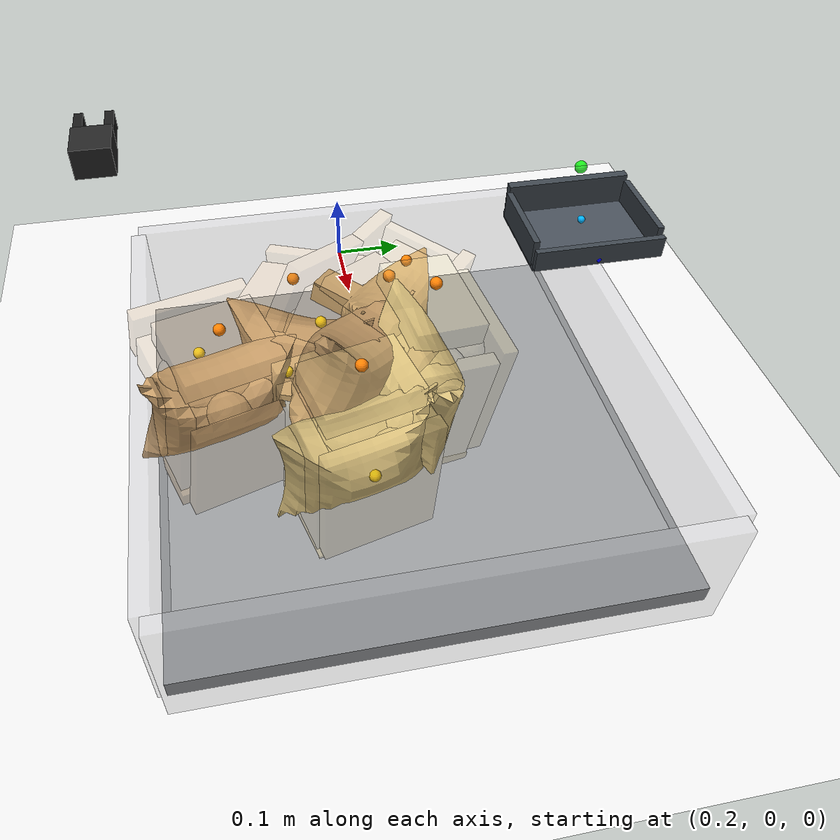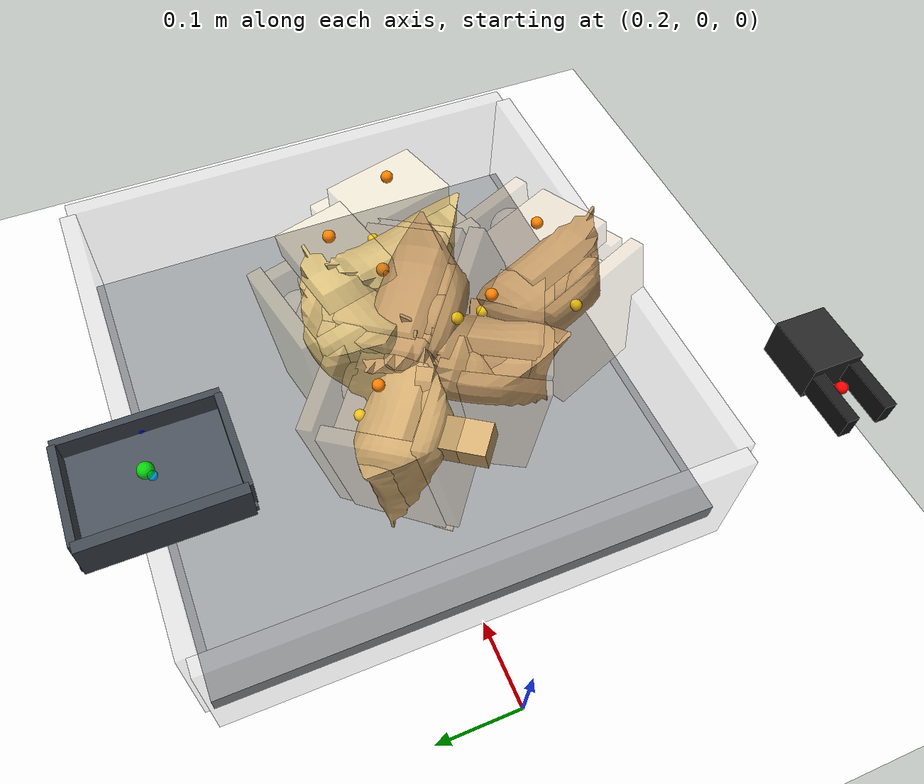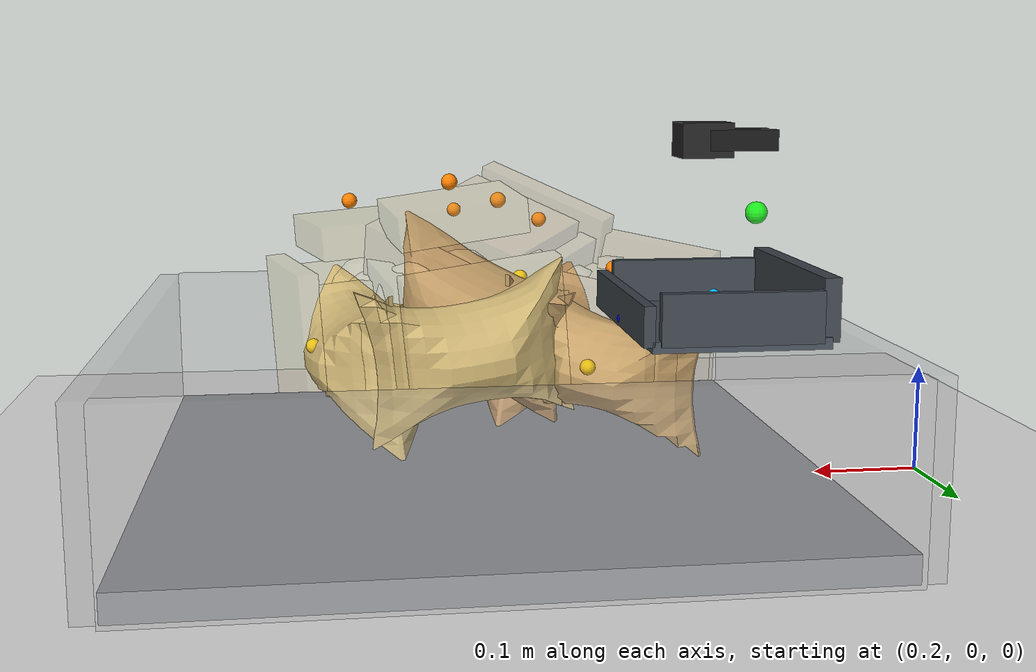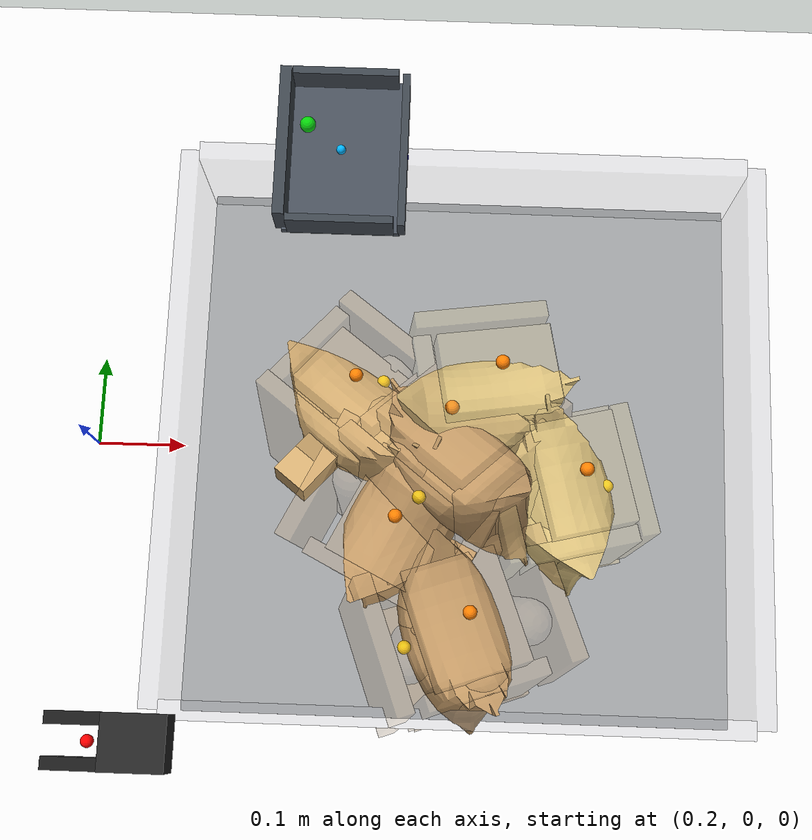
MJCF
<mujoco model="side_bulged_unstable_leaning_wedged_ep0_try0">
  <compiler angle="radian" coordinate="local" inertiafromgeom="true" meshdir="D:/Michael/2025/01.Research/01.Parceldetection/16.Pybullet/bullet3-master (1)/bullet3-master/examples/pybullet/examples/DeformableTest/Sackcodex2/object"/>
  <option timestep="0.002" gravity="0 0 -9.81" integrator="implicitfast" iterations="100" tolerance="1e-8"/>
  <size memory="768M" nconmax="12000"/>

  <visual>
    <global azimuth="128" elevation="-20"/>
    <headlight ambient="0.34 0.34 0.34" diffuse="0.78 0.78 0.78" specular="0.15 0.15 0.15"/>
    <rgba haze="0.11 0.13 0.18 1"/>
  </visual>

  <default>
    <geom condim="4" friction="1.15 0.03 0.01" margin="0.003" solimp="0.93 0.98 0.003" solref="0.012 1"/>
    <joint damping="1.2" armature="0.002"/>
    <position kp="2500" forcelimited="true" forcerange="-420 420"/>
    <motor ctrllimited="true"/>
  </default>

  <asset>
    <mesh name="sack_0_visual_mesh" file="sack6Apply.obj" scale="0.0727 0.0727 0.0766"/>
    <mesh name="sack_1_visual_mesh" file="sack9.obj" scale="0.0698 0.0698 0.0742"/>
    <mesh name="sack_2_visual_mesh" file="sack9.obj" scale="0.0699 0.0699 0.0769"/>
    <mesh name="sack_3_visual_mesh" file="sack10.obj" scale="0.0668 0.0668 0.0689"/>
    <mesh name="sack_4_visual_mesh" file="sack6Apply.obj" scale="0.0717 0.0717 0.0766"/>
    <mesh name="sack_5_visual_mesh" file="sack7.obj" scale="0.0715 0.0715 0.0786"/>
  </asset>

  <worldbody>
    <light name="key" pos="0.85 0.15 1.8" dir="-0.2 -0.1 -1" directional="true"/>
    <geom name="floor" type="plane" size="2 2 0.1" rgba="0.93 0.93 0.93 1"/>
    <geom name="work_pad" type="box" pos="0.62 0 0.012" size="0.30 0.30 0.012" rgba="0.60 0.61 0.62 1" friction="1.4 0.05 0.01"/>
    <geom name="corral_front" type="box" pos="0.93 0.00 0.08" size="0.010 0.30 0.08" rgba="0.55 0.55 0.58 0.22" friction="1.0 0.03 0.01"/>
    <geom name="corral_back" type="box" pos="0.31 0.00 0.08" size="0.010 0.30 0.08" rgba="0.55 0.55 0.58 0.18" friction="1.0 0.03 0.01"/>
    <geom name="corral_left" type="box" pos="0.62 0.30 0.08" size="0.30 0.010 0.08" rgba="0.55 0.55 0.58 0.14" friction="1.0 0.03 0.01"/>
    <geom name="corral_right" type="box" pos="0.62 -0.30 0.08" size="0.30 0.010 0.08" rgba="0.55 0.55 0.58 0.14" friction="1.0 0.03 0.01"/>
    <camera name="overview" pos="1.22 0.00 0.92" xyaxes="0 1 0 -0.46 0 0.88"/>

    <body name="gripper_mocap" mocap="true" pos="0.36 -0.33 0.30" quat="0.707107 0 -0.707107 0"/>
    <body name="scoop_mocap" mocap="true" pos="0.42 0.28 0.20" quat="1 0 0 0"/>

    <body name="gripper_ctrl_base" pos="0.36 -0.33 0.30">
      <inertial pos="0 0 0" mass="0.001" diaginertia="1e-6 1e-6 1e-6"/>
      <joint name="gripper_ctrl_x" type="slide" axis="1 0 0" limited="true" range="0.20 1.00"/>
      <body name="gripper_ctrl_y_body">
        <inertial pos="0 0 0" mass="0.001" diaginertia="1e-6 1e-6 1e-6"/>
        <joint name="gripper_ctrl_y" type="slide" axis="0 1 0" limited="true" range="-0.60 0.60"/>
        <body name="gripper_ctrl_z_body">
          <inertial pos="0 0 0" mass="0.001" diaginertia="1e-6 1e-6 1e-6"/>
          <joint name="gripper_ctrl_z" type="slide" axis="0 0 1" limited="true" range="0.04 0.70"/>
          <body name="gripper_ctrl_yaw_body">
            <inertial pos="0 0 0" mass="0.001" diaginertia="1e-6 1e-6 1e-6"/>
            <joint name="gripper_ctrl_yaw" type="hinge" axis="0 0 1" limited="true" range="-3.1416 3.1416"/>
            <body name="gripper_ctrl_pitch_body">
              <inertial pos="0 0 0" mass="0.001" diaginertia="1e-6 1e-6 1e-6"/>
              <joint name="gripper_ctrl_pitch" type="hinge" axis="0 1 0" limited="true" range="-3.1416 3.1416"/>
              <body name="gripper_ctrl_roll_body">
                <inertial pos="0 0 0" mass="0.001" diaginertia="1e-6 1e-6 1e-6"/>
                <joint name="gripper_ctrl_roll" type="hinge" axis="1 0 0" limited="true" range="-3.1416 3.1416"/>
              </body>
            </body>
          </body>
        </body>
      </body>
    </body>

    <body name="scoop_ctrl_base" pos="0.42 0.28 0.20">
      <inertial pos="0 0 0" mass="0.001" diaginertia="1e-6 1e-6 1e-6"/>
      <joint name="scoop_ctrl_x" type="slide" axis="1 0 0" limited="true" range="0.20 1.00"/>
      <body name="scoop_ctrl_y_body">
        <inertial pos="0 0 0" mass="0.001" diaginertia="1e-6 1e-6 1e-6"/>
        <joint name="scoop_ctrl_y" type="slide" axis="0 1 0" limited="true" range="-0.60 0.60"/>
        <body name="scoop_ctrl_z_body">
          <inertial pos="0 0 0" mass="0.001" diaginertia="1e-6 1e-6 1e-6"/>
          <joint name="scoop_ctrl_z" type="slide" axis="0 0 1" limited="true" range="0.04 0.70"/>
          <body name="scoop_ctrl_yaw_body">
            <inertial pos="0 0 0" mass="0.001" diaginertia="1e-6 1e-6 1e-6"/>
            <joint name="scoop_ctrl_yaw" type="hinge" axis="0 0 1" limited="true" range="-3.1416 3.1416"/>
            <body name="scoop_ctrl_pitch_body">
              <inertial pos="0 0 0" mass="0.001" diaginertia="1e-6 1e-6 1e-6"/>
              <joint name="scoop_ctrl_pitch" type="hinge" axis="0 1 0" limited="true" range="-3.1416 3.1416"/>
              <body name="scoop_ctrl_roll_body">
                <inertial pos="0 0 0" mass="0.001" diaginertia="1e-6 1e-6 1e-6"/>
                <joint name="scoop_ctrl_roll" type="hinge" axis="1 0 0" limited="true" range="-3.1416 3.1416"/>
              </body>
            </body>
          </body>
        </body>
      </body>
    </body>

    <body name="gripper_tool" pos="0.36 -0.33 0.30" quat="0.707107 0 -0.707107 0">
      <freejoint name="gripper_tool_free"/>
      <inertial pos="0 0 0.04" mass="0.08" diaginertia="0.0002 0.0002 0.0002"/>
      <geom name="gripper_palm" type="box" pos="0 0 0.030" size="0.020 0.026 0.030" rgba="0.14 0.14 0.14 1"/>
      <body name="left_finger_body" pos="0 0 0.072">
        <joint name="left_finger_slide" type="slide" axis="0 1 0" limited="true" range="0.010 0.040" damping="12"/>
        <geom name="left_finger_geom" type="box" pos="0 0.020 0" size="0.012 0.006 0.040" rgba="0.10 0.10 0.10 1" friction="2.2 0.05 0.01"/>
      </body>
      <body name="right_finger_body" pos="0 0 0.072">
        <joint name="right_finger_slide" type="slide" axis="0 -1 0" limited="true" range="0.010 0.040" damping="12"/>
        <geom name="right_finger_geom" type="box" pos="0 -0.020 0" size="0.012 0.006 0.040" rgba="0.10 0.10 0.10 1" friction="2.2 0.05 0.01"/>
      </body>
      <site name="gripper_pinch_site" pos="0 0 0.074" size="0.006" rgba="1 0 0 1"/>
    </body>

    <body name="scoop_tool" pos="0.42 0.28 0.20" quat="1 0 0 0">
      <freejoint name="scoop_tool_free"/>
      <inertial pos="0 0 0.02" mass="0.10" diaginertia="0.0003 0.0003 0.0003"/>
      <geom name="scoop_plate" type="box" pos="0.062 0 0" size="0.062 0.085 0.004" rgba="0.28 0.31 0.35 1" friction="1.7 0.05 0.01"/>
      <geom name="scoop_lip" type="box" pos="0.126 0 0.014" size="0.004 0.085 0.014" rgba="0.24 0.27 0.30 1" friction="1.7 0.05 0.01"/>
      <geom name="scoop_left_rail" type="box" pos="0.062 0.082 0.018" size="0.056 0.004 0.018" rgba="0.24 0.27 0.30 1"/>
      <geom name="scoop_right_rail" type="box" pos="0.062 -0.082 0.018" size="0.056 0.004 0.018" rgba="0.24 0.27 0.30 1"/>
      <geom name="scoop_backstop" type="box" pos="0.000 0 0.022" size="0.006 0.082 0.022" rgba="0.24 0.27 0.30 1"/>
      <site name="scoop_tip_site" pos="0.126 0 0.005" size="0.005" rgba="0 0 1 1"/>
      <site name="scoop_center_site" pos="0.060 0 0.020" size="0.005" rgba="0 0.7 1 1"/>
      <site name="score_overlay_site" pos="0.030 0 0.080" size="0.008" rgba="0 1 0 0.8"/>
    </body>

    <body name="sack_0" pos="0.6151 -0.0485 0.1513" euler="-0.4143 -0.0530 2.3714">
      <freejoint name="sack_0_free"/>

      <geom name="sack_0_visual" type="mesh" mesh="sack_0_visual_mesh" rgba="0.760 0.600 0.400 0.92" contype="0" conaffinity="0"/>
      <site name="sack_0_center_site" pos="0 0 0.000" size="0.006" rgba="0 1 0 1"/>
      <site name="sack_0_top_site" pos="0 0.0060 0.1222" size="0.007" rgba="1 0.5 0 1"/>
      <site name="sack_0_side_site" pos="0.0000 0.0571 0.018" size="0.007" rgba="1 0.8 0 1"/>

      <geom name="sack_0_core_geom" type="ellipsoid" pos="0 0 0.0058" size="0.0447 0.0349 0.0785" mass="0.7563" rgba="0.760 0.600 0.400 0.12" friction="1.0 0.03 0.01"/>
      <geom name="sack_0_core_front" type="capsule" fromto="-0.0200 0 -0.0200 0.0450 0 0.0600" size="0.0304" mass="0.1801" rgba="0.760 0.600 0.400 0.10"/>
      <geom name="sack_0_core_left" type="capsule" fromto="-0.008 0.0380 -0.010 0.018 0.0560 0.060" size="0.0242" mass="0.3241" rgba="0.760 0.600 0.400 0.10"/>
      <geom name="sack_0_core_right" type="capsule" fromto="-0.006 -0.0380 -0.008 0.020 -0.0580 0.054" size="0.0222" mass="0.3241" rgba="0.760 0.600 0.400 0.10"/>

      <body name="sack_0_bottom_support_proxy_body" pos="0 0.0118 -0.0949">
        <joint name="sack_0_bottom_x" type="slide" axis="1 0 0" limited="true" range="-0.012 0.012" damping="18" stiffness="473.1"/>
        <joint name="sack_0_bottom_y" type="slide" axis="0 1 0" limited="true" range="-0.012 0.012" damping="18" stiffness="473.1"/>
        <joint name="sack_0_bottom_z" type="slide" axis="0 0 1" limited="true" range="-0.008 0.020" damping="24" stiffness="582.6"/>
        <geom name="sack_0_bottom_support_proxy" type="box" size="0.0754 0.0631 0.0100" mass="0.1441" rgba="0.760 0.600 0.400 0.34" friction="1.55 0.05 0.01"/>
      </body>

      <body name="sack_0_top_grasp_proxy_body" pos="0.0000 0.0060 0.0922">
        <joint name="sack_0_top_x" type="slide" axis="1 0 0" limited="true" range="-0.018 0.018" damping="12" stiffness="181.7"/>
        <joint name="sack_0_top_y" type="slide" axis="0 1 0" limited="true" range="-0.018 0.018" damping="12" stiffness="181.7"/>
        <joint name="sack_0_top_z" type="slide" axis="0 0 1" limited="true" range="-0.040 0.010" damping="14" stiffness="134.4"/>
        <geom name="sack_0_top_grasp_proxy" type="box" size="0.0594 0.0471 0.0150" mass="0.1080" rgba="0.760 0.600 0.400 0.26" friction="2.2 0.05 0.01"/>
      </body>

      <body name="sack_0_left_side_proxy_body" pos="0 0.0851 0.010">
        <joint name="sack_0_left_side_slide" type="slide" axis="0 -1 0" limited="true" range="-0.028 0.016" damping="16" stiffness="238.2"/>
        <geom name="sack_0_left_side_proxy" type="box" size="0.0714 0.0090 0.0929" mass="0.1080" rgba="0.760 0.600 0.400 0.24"/>
      </body>

      <body name="sack_0_right_side_proxy_body" pos="0 -0.0811 0.010">
        <joint name="sack_0_right_side_slide" type="slide" axis="0 1 0" limited="true" range="-0.028 0.016" damping="16" stiffness="220.8"/>
        <geom name="sack_0_right_side_proxy" type="box" size="0.0714 0.0090 0.0929" mass="0.1080" rgba="0.760 0.600 0.400 0.24"/>
      </body>

      <body name="sack_0_front_proxy_body" pos="0.0654 0 0.000">
        <joint name="sack_0_front_slide" type="slide" axis="-1 0 0" limited="true" range="-0.022 0.012" damping="15" stiffness="226.5"/>
        <geom name="sack_0_front_support_proxy" type="box" size="0.0090 0.0631 0.0909" mass="0.0900" rgba="0.760 0.600 0.400 0.22"/>
      </body>

      <body name="sack_0_back_proxy_body" pos="-0.0654 0 0.000">
        <joint name="sack_0_back_slide" type="slide" axis="1 0 0" limited="true" range="-0.022 0.012" damping="15" stiffness="209.1"/>
        <geom name="sack_0_back_support_proxy" type="box" size="0.0090 0.0631 0.0909" mass="0.0900" rgba="0.760 0.600 0.400 0.22"/>
      </body>

      <body name="sack_0_shape_proxy_body" pos="0.0000 0.0300 0.0356">
        <joint name="sack_0_bulge_y" type="slide" axis="0 1 0" limited="true" range="-0.020 0.020" damping="8" stiffness="91.3"/>
        <joint name="sack_0_bulge_z" type="slide" axis="0 0 1" limited="true" range="-0.014 0.028" damping="8" stiffness="93.5"/>
        <geom name="sack_0_shape_proxy" type="ellipsoid" size="0.0202 0.0164 0.0261" mass="0.0720" rgba="0.760 0.600 0.400 0.28"/>
      </body>
    </body>

    <body name="sack_1" pos="0.5553 -0.1000 0.1168" euler="0.0396 -0.0695 1.1013">
      <freejoint name="sack_1_free"/>

      <geom name="sack_1_visual" type="mesh" mesh="sack_1_visual_mesh" rgba="0.760 0.600 0.400 0.92" contype="0" conaffinity="0"/>
      <site name="sack_1_center_site" pos="0 0 0.000" size="0.006" rgba="0 1 0 1"/>
      <site name="sack_1_top_site" pos="0 -0.0060 0.1185" size="0.007" rgba="1 0.5 0 1"/>
      <site name="sack_1_side_site" pos="0.0000 -0.0580 0.018" size="0.007" rgba="1 0.8 0 1"/>

      <geom name="sack_1_core_geom" type="ellipsoid" pos="0 0 0.0058" size="0.0450 0.0353 0.0792" mass="0.7768" rgba="0.760 0.600 0.400 0.12" friction="1.0 0.03 0.01"/>
      <geom name="sack_1_core_front" type="capsule" fromto="-0.0200 0 -0.0200 0.0450 0 0.0600" size="0.0308" mass="0.1849" rgba="0.760 0.600 0.400 0.10"/>
      <geom name="sack_1_core_left" type="capsule" fromto="-0.008 0.0388 -0.010 0.018 0.0568 0.060" size="0.0242" mass="0.3329" rgba="0.760 0.600 0.400 0.10"/>
      <geom name="sack_1_core_right" type="capsule" fromto="-0.006 -0.0388 -0.008 0.020 -0.0588 0.054" size="0.0222" mass="0.3329" rgba="0.760 0.600 0.400 0.10"/>

      <body name="sack_1_bottom_support_proxy_body" pos="0 -0.0091 -0.0848">
        <joint name="sack_1_bottom_x" type="slide" axis="1 0 0" limited="true" range="-0.012 0.012" damping="18" stiffness="483.2"/>
        <joint name="sack_1_bottom_y" type="slide" axis="0 1 0" limited="true" range="-0.012 0.012" damping="18" stiffness="483.2"/>
        <joint name="sack_1_bottom_z" type="slide" axis="0 0 1" limited="true" range="-0.008 0.020" damping="24" stiffness="595.0"/>
        <geom name="sack_1_bottom_support_proxy" type="box" size="0.0757 0.0640 0.0100" mass="0.1480" rgba="0.760 0.600 0.400 0.34" friction="1.55 0.05 0.01"/>
      </body>

      <body name="sack_1_top_grasp_proxy_body" pos="0.0000 -0.0060 0.0885">
        <joint name="sack_1_top_x" type="slide" axis="1 0 0" limited="true" range="-0.018 0.018" damping="12" stiffness="185.7"/>
        <joint name="sack_1_top_y" type="slide" axis="0 1 0" limited="true" range="-0.018 0.018" damping="12" stiffness="185.7"/>
        <joint name="sack_1_top_z" type="slide" axis="0 0 1" limited="true" range="-0.040 0.010" damping="14" stiffness="137.7"/>
        <geom name="sack_1_top_grasp_proxy" type="box" size="0.0597 0.0480 0.0150" mass="0.1110" rgba="0.760 0.600 0.400 0.26" friction="2.2 0.05 0.01"/>
      </body>

      <body name="sack_1_left_side_proxy_body" pos="0 0.0869 0.010">
        <joint name="sack_1_left_side_slide" type="slide" axis="0 -1 0" limited="true" range="-0.028 0.016" damping="16" stiffness="244.8"/>
        <geom name="sack_1_left_side_proxy" type="box" size="0.0717 0.0090 0.0828" mass="0.1110" rgba="0.760 0.600 0.400 0.24"/>
      </body>

      <body name="sack_1_right_side_proxy_body" pos="0 -0.0829 0.010">
        <joint name="sack_1_right_side_slide" type="slide" axis="0 1 0" limited="true" range="-0.028 0.016" damping="16" stiffness="226.9"/>
        <geom name="sack_1_right_side_proxy" type="box" size="0.0717 0.0090 0.0828" mass="0.1110" rgba="0.760 0.600 0.400 0.24"/>
      </body>

      <body name="sack_1_front_proxy_body" pos="0.0657 0 0.000">
        <joint name="sack_1_front_slide" type="slide" axis="-1 0 0" limited="true" range="-0.022 0.012" damping="15" stiffness="231.6"/>
        <geom name="sack_1_front_support_proxy" type="box" size="0.0090 0.0640 0.0808" mass="0.0925" rgba="0.760 0.600 0.400 0.22"/>
      </body>

      <body name="sack_1_back_proxy_body" pos="-0.0657 0 0.000">
        <joint name="sack_1_back_slide" type="slide" axis="1 0 0" limited="true" range="-0.022 0.012" damping="15" stiffness="213.6"/>
        <geom name="sack_1_back_support_proxy" type="box" size="0.0090 0.0640 0.0808" mass="0.0925" rgba="0.760 0.600 0.400 0.22"/>
      </body>

      <body name="sack_1_shape_proxy_body" pos="0.0000 -0.0308 0.0323">
        <joint name="sack_1_bulge_y" type="slide" axis="0 1 0" limited="true" range="-0.020 0.020" damping="8" stiffness="84.5"/>
        <joint name="sack_1_bulge_z" type="slide" axis="0 0 1" limited="true" range="-0.014 0.028" damping="8" stiffness="88.4"/>
        <geom name="sack_1_shape_proxy" type="ellipsoid" size="0.0202 0.0164 0.0262" mass="0.0740" rgba="0.760 0.600 0.400 0.28"/>
      </body>
    </body>

    <body name="sack_2" pos="0.6349 0.0242 0.1299" euler="-0.1299 0.1005 0.1819">
      <freejoint name="sack_2_free"/>

      <geom name="sack_2_visual" type="mesh" mesh="sack_2_visual_mesh" rgba="0.840 0.740 0.480 0.92" contype="0" conaffinity="0"/>
      <site name="sack_2_center_site" pos="0 0 0.000" size="0.006" rgba="0 1 0 1"/>
      <site name="sack_2_top_site" pos="0 -0.0060 0.1563" size="0.007" rgba="1 0.5 0 1"/>
      <site name="sack_2_side_site" pos="0.0000 -0.0516 0.018" size="0.007" rgba="1 0.8 0 1"/>

      <geom name="sack_2_core_geom" type="ellipsoid" pos="0 0 0.0060" size="0.0510 0.0432 0.0912" mass="1.0247" rgba="0.840 0.740 0.480 0.12" friction="1.0 0.03 0.01"/>
      <geom name="sack_2_core_front" type="capsule" fromto="-0.0200 0 -0.0200 0.0450 0 0.0600" size="0.0320" mass="0.2440" rgba="0.840 0.740 0.480 0.10"/>
      <geom name="sack_2_core_left" type="capsule" fromto="-0.008 0.0281 -0.010 0.018 0.0461 0.060" size="0.0241" mass="0.4392" rgba="0.840 0.740 0.480 0.10"/>
      <geom name="sack_2_core_right" type="capsule" fromto="-0.006 -0.0281 -0.008 0.020 -0.0481 0.054" size="0.0221" mass="0.4392" rgba="0.840 0.740 0.480 0.10"/>

      <body name="sack_2_bottom_support_proxy_body" pos="0 0.0016 -0.0917">
        <joint name="sack_2_bottom_x" type="slide" axis="1 0 0" limited="true" range="-0.012 0.012" damping="18" stiffness="519.9"/>
        <joint name="sack_2_bottom_y" type="slide" axis="0 1 0" limited="true" range="-0.012 0.012" damping="18" stiffness="519.9"/>
        <joint name="sack_2_bottom_z" type="slide" axis="0 0 1" limited="true" range="-0.008 0.020" damping="24" stiffness="639.9"/>
        <geom name="sack_2_bottom_support_proxy" type="box" size="0.0728 0.0576 0.0100" mass="0.1952" rgba="0.840 0.740 0.480 0.34" friction="1.55 0.05 0.01"/>
      </body>

      <body name="sack_2_top_grasp_proxy_body" pos="0.0000 -0.0060 0.1263">
        <joint name="sack_2_top_x" type="slide" axis="1 0 0" limited="true" range="-0.018 0.018" damping="12" stiffness="200.0"/>
        <joint name="sack_2_top_y" type="slide" axis="0 1 0" limited="true" range="-0.018 0.018" damping="12" stiffness="200.0"/>
        <joint name="sack_2_top_z" type="slide" axis="0 0 1" limited="true" range="-0.040 0.010" damping="14" stiffness="150.0"/>
        <geom name="sack_2_top_grasp_proxy" type="box" size="0.0568 0.0416 0.0150" mass="0.1464" rgba="0.840 0.740 0.480 0.26" friction="2.2 0.05 0.01"/>
      </body>

      <body name="sack_2_left_side_proxy_body" pos="0 0.0697 0.010">
        <joint name="sack_2_left_side_slide" type="slide" axis="0 -1 0" limited="true" range="-0.028 0.016" damping="16" stiffness="269.9"/>
        <geom name="sack_2_left_side_proxy" type="box" size="0.0688 0.0090 0.0897" mass="0.1464" rgba="0.840 0.740 0.480 0.24"/>
      </body>

      <body name="sack_2_right_side_proxy_body" pos="0 -0.0657 0.010">
        <joint name="sack_2_right_side_slide" type="slide" axis="0 1 0" limited="true" range="-0.028 0.016" damping="16" stiffness="249.9"/>
        <geom name="sack_2_right_side_proxy" type="box" size="0.0688 0.0090 0.0897" mass="0.1464" rgba="0.840 0.740 0.480 0.24"/>
      </body>

      <body name="sack_2_front_proxy_body" pos="0.0628 0 0.000">
        <joint name="sack_2_front_slide" type="slide" axis="-1 0 0" limited="true" range="-0.022 0.012" damping="15" stiffness="249.9"/>
        <geom name="sack_2_front_support_proxy" type="box" size="0.0090 0.0576 0.0877" mass="0.1220" rgba="0.840 0.740 0.480 0.22"/>
      </body>

      <body name="sack_2_back_proxy_body" pos="-0.0628 0 0.000">
        <joint name="sack_2_back_slide" type="slide" axis="1 0 0" limited="true" range="-0.022 0.012" damping="15" stiffness="230.0"/>
        <geom name="sack_2_back_support_proxy" type="box" size="0.0090 0.0576 0.0877" mass="0.1220" rgba="0.840 0.740 0.480 0.22"/>
      </body>

      <body name="sack_2_shape_proxy_body" pos="0.0000 -0.0201 0.0200">
        <joint name="sack_2_bulge_y" type="slide" axis="0 1 0" limited="true" range="-0.020 0.020" damping="8" stiffness="60.1"/>
        <joint name="sack_2_bulge_z" type="slide" axis="0 0 1" limited="true" range="-0.014 0.028" damping="8" stiffness="70.1"/>
        <geom name="sack_2_shape_proxy" type="ellipsoid" size="0.0201 0.0162 0.0260" mass="0.0976" rgba="0.840 0.740 0.480 0.28"/>
      </body>
    </body>

    <body name="sack_3" pos="0.5009 0.0147 0.1117" euler="-0.2148 0.0157 -0.6822">
      <freejoint name="sack_3_free"/>

      <geom name="sack_3_visual" type="mesh" mesh="sack_3_visual_mesh" rgba="0.820 0.670 0.440 0.92" contype="0" conaffinity="0"/>
      <site name="sack_3_center_site" pos="0 0 0.000" size="0.006" rgba="0 1 0 1"/>
      <site name="sack_3_top_site" pos="0 0.0060 0.0982" size="0.007" rgba="1 0.5 0 1"/>
      <site name="sack_3_side_site" pos="0.0000 0.0481 0.018" size="0.007" rgba="1 0.8 0 1"/>

      <geom name="sack_3_core_geom" type="ellipsoid" pos="0 0 0.0057" size="0.0451 0.0351 0.0670" mass="0.7965" rgba="0.820 0.670 0.440 0.12" friction="1.0 0.03 0.01"/>
      <geom name="sack_3_core_front" type="capsule" fromto="-0.0200 0 -0.0200 0.0450 0 0.0600" size="0.0297" mass="0.1896" rgba="0.820 0.670 0.440 0.10"/>
      <geom name="sack_3_core_left" type="capsule" fromto="-0.008 0.0263 -0.010 0.018 0.0443 0.060" size="0.0241" mass="0.3413" rgba="0.820 0.670 0.440 0.10"/>
      <geom name="sack_3_core_right" type="capsule" fromto="-0.006 -0.0263 -0.008 0.020 -0.0463 0.054" size="0.0221" mass="0.3413" rgba="0.820 0.670 0.440 0.10"/>

      <body name="sack_3_bottom_support_proxy_body" pos="0 -0.0079 -0.0977">
        <joint name="sack_3_bottom_x" type="slide" axis="1 0 0" limited="true" range="-0.012 0.012" damping="18" stiffness="450.5"/>
        <joint name="sack_3_bottom_y" type="slide" axis="0 1 0" limited="true" range="-0.012 0.012" damping="18" stiffness="450.5"/>
        <joint name="sack_3_bottom_z" type="slide" axis="0 0 1" limited="true" range="-0.008 0.020" damping="24" stiffness="555.0"/>
        <geom name="sack_3_bottom_support_proxy" type="box" size="0.0727 0.0541 0.0100" mass="0.1517" rgba="0.820 0.670 0.440 0.34" friction="1.55 0.05 0.01"/>
      </body>

      <body name="sack_3_top_grasp_proxy_body" pos="0.0000 0.0060 0.0682">
        <joint name="sack_3_top_x" type="slide" axis="1 0 0" limited="true" range="-0.018 0.018" damping="12" stiffness="173.0"/>
        <joint name="sack_3_top_y" type="slide" axis="0 1 0" limited="true" range="-0.018 0.018" damping="12" stiffness="173.0"/>
        <joint name="sack_3_top_z" type="slide" axis="0 0 1" limited="true" range="-0.040 0.010" damping="14" stiffness="126.8"/>
        <geom name="sack_3_top_grasp_proxy" type="box" size="0.0567 0.0381 0.0150" mass="0.1138" rgba="0.820 0.670 0.440 0.26" friction="2.2 0.05 0.01"/>
      </body>

      <body name="sack_3_left_side_proxy_body" pos="0 0.0643 0.010">
        <joint name="sack_3_left_side_slide" type="slide" axis="0 -1 0" limited="true" range="-0.028 0.016" damping="16" stiffness="222.6"/>
        <geom name="sack_3_left_side_proxy" type="box" size="0.0687 0.0090 0.0957" mass="0.1138" rgba="0.820 0.670 0.440 0.24"/>
      </body>

      <body name="sack_3_right_side_proxy_body" pos="0 -0.0603 0.010">
        <joint name="sack_3_right_side_slide" type="slide" axis="0 1 0" limited="true" range="-0.028 0.016" damping="16" stiffness="206.5"/>
        <geom name="sack_3_right_side_proxy" type="box" size="0.0687 0.0090 0.0957" mass="0.1138" rgba="0.820 0.670 0.440 0.24"/>
      </body>

      <body name="sack_3_front_proxy_body" pos="0.0627 0 0.000">
        <joint name="sack_3_front_slide" type="slide" axis="-1 0 0" limited="true" range="-0.022 0.012" damping="15" stiffness="215.2"/>
        <geom name="sack_3_front_support_proxy" type="box" size="0.0090 0.0541 0.0937" mass="0.0948" rgba="0.820 0.670 0.440 0.22"/>
      </body>

      <body name="sack_3_back_proxy_body" pos="-0.0627 0 0.000">
        <joint name="sack_3_back_slide" type="slide" axis="1 0 0" limited="true" range="-0.022 0.012" damping="15" stiffness="199.1"/>
        <geom name="sack_3_back_support_proxy" type="box" size="0.0090 0.0541 0.0937" mass="0.0948" rgba="0.820 0.670 0.440 0.22"/>
      </body>

      <body name="sack_3_shape_proxy_body" pos="0.0000 0.0183 0.0432">
        <joint name="sack_3_bulge_y" type="slide" axis="0 1 0" limited="true" range="-0.020 0.020" damping="8" stiffness="106.4"/>
        <joint name="sack_3_bulge_z" type="slide" axis="0 0 1" limited="true" range="-0.014 0.028" damping="8" stiffness="104.8"/>
        <geom name="sack_3_shape_proxy" type="ellipsoid" size="0.0201 0.0161 0.0263" mass="0.0759" rgba="0.820 0.670 0.440 0.28"/>
      </body>
    </body>

    <body name="sack_4" pos="0.6164 -0.2127 0.1197" euler="-0.1385 0.1464 -1.2136">
      <freejoint name="sack_4_free"/>

      <geom name="sack_4_visual" type="mesh" mesh="sack_4_visual_mesh" rgba="0.760 0.600 0.400 0.92" contype="0" conaffinity="0"/>
      <site name="sack_4_center_site" pos="0 0 0.000" size="0.006" rgba="0 1 0 1"/>
      <site name="sack_4_top_site" pos="0 -0.0060 0.1183" size="0.007" rgba="1 0.5 0 1"/>
      <site name="sack_4_side_site" pos="0.0000 -0.0587 0.018" size="0.007" rgba="1 0.8 0 1"/>

      <geom name="sack_4_core_geom" type="ellipsoid" pos="0 0 0.0059" size="0.0451 0.0355 0.0795" mass="0.9307" rgba="0.760 0.600 0.400 0.12" friction="1.0 0.03 0.01"/>
      <geom name="sack_4_core_front" type="capsule" fromto="-0.0200 0 -0.0200 0.0450 0 0.0600" size="0.0309" mass="0.2216" rgba="0.760 0.600 0.400 0.10"/>
      <geom name="sack_4_core_left" type="capsule" fromto="-0.008 0.0448 -0.010 0.018 0.0628 0.060" size="0.0242" mass="0.3989" rgba="0.760 0.600 0.400 0.10"/>
      <geom name="sack_4_core_right" type="capsule" fromto="-0.006 -0.0448 -0.008 0.020 -0.0648 0.054" size="0.0223" mass="0.3989" rgba="0.760 0.600 0.400 0.10"/>

      <body name="sack_4_bottom_support_proxy_body" pos="0 0.0083 -0.0764">
        <joint name="sack_4_bottom_x" type="slide" axis="1 0 0" limited="true" range="-0.012 0.012" damping="18" stiffness="487.9"/>
        <joint name="sack_4_bottom_y" type="slide" axis="0 1 0" limited="true" range="-0.012 0.012" damping="18" stiffness="487.9"/>
        <joint name="sack_4_bottom_z" type="slide" axis="0 0 1" limited="true" range="-0.008 0.020" damping="24" stiffness="600.7"/>
        <geom name="sack_4_bottom_support_proxy" type="box" size="0.0759 0.0647 0.0100" mass="0.1773" rgba="0.760 0.600 0.400 0.34" friction="1.55 0.05 0.01"/>
      </body>

      <body name="sack_4_top_grasp_proxy_body" pos="0.0000 -0.0060 0.0883">
        <joint name="sack_4_top_x" type="slide" axis="1 0 0" limited="true" range="-0.018 0.018" damping="12" stiffness="187.5"/>
        <joint name="sack_4_top_y" type="slide" axis="0 1 0" limited="true" range="-0.018 0.018" damping="12" stiffness="187.5"/>
        <joint name="sack_4_top_z" type="slide" axis="0 0 1" limited="true" range="-0.040 0.010" damping="14" stiffness="139.3"/>
        <geom name="sack_4_top_grasp_proxy" type="box" size="0.0599 0.0487 0.0150" mass="0.1330" rgba="0.760 0.600 0.400 0.26" friction="2.2 0.05 0.01"/>
      </body>

      <body name="sack_4_left_side_proxy_body" pos="0 0.0935 0.010">
        <joint name="sack_4_left_side_slide" type="slide" axis="0 -1 0" limited="true" range="-0.028 0.016" damping="16" stiffness="248.1"/>
        <geom name="sack_4_left_side_proxy" type="box" size="0.0719 0.0090 0.0744" mass="0.1330" rgba="0.760 0.600 0.400 0.24"/>
      </body>

      <body name="sack_4_right_side_proxy_body" pos="0 -0.0895 0.010">
        <joint name="sack_4_right_side_slide" type="slide" axis="0 1 0" limited="true" range="-0.028 0.016" damping="16" stiffness="229.9"/>
        <geom name="sack_4_right_side_proxy" type="box" size="0.0719 0.0090 0.0744" mass="0.1330" rgba="0.760 0.600 0.400 0.24"/>
      </body>

      <body name="sack_4_front_proxy_body" pos="0.0659 0 0.000">
        <joint name="sack_4_front_slide" type="slide" axis="-1 0 0" limited="true" range="-0.022 0.012" damping="15" stiffness="233.9"/>
        <geom name="sack_4_front_support_proxy" type="box" size="0.0090 0.0647 0.0724" mass="0.1108" rgba="0.760 0.600 0.400 0.22"/>
      </body>

      <body name="sack_4_back_proxy_body" pos="-0.0659 0 0.000">
        <joint name="sack_4_back_slide" type="slide" axis="1 0 0" limited="true" range="-0.022 0.012" damping="15" stiffness="215.7"/>
        <geom name="sack_4_back_support_proxy" type="box" size="0.0090 0.0647 0.0724" mass="0.1108" rgba="0.760 0.600 0.400 0.22"/>
      </body>

      <body name="sack_4_shape_proxy_body" pos="0.0000 -0.0368 0.0307">
        <joint name="sack_4_bulge_y" type="slide" axis="0 1 0" limited="true" range="-0.020 0.020" damping="8" stiffness="81.4"/>
        <joint name="sack_4_bulge_z" type="slide" axis="0 0 1" limited="true" range="-0.014 0.028" damping="8" stiffness="86.1"/>
        <geom name="sack_4_shape_proxy" type="ellipsoid" size="0.0202 0.0165 0.0261" mass="0.0886" rgba="0.760 0.600 0.400 0.28"/>
      </body>
    </body>

    <body name="sack_5" pos="0.7219 -0.0647 0.1105" euler="-0.0278 0.0602 1.8169">
      <freejoint name="sack_5_free"/>

      <geom name="sack_5_visual" type="mesh" mesh="sack_5_visual_mesh" rgba="0.840 0.740 0.480 0.92" contype="0" conaffinity="0"/>
      <site name="sack_5_center_site" pos="0 0 0.000" size="0.006" rgba="0 1 0 1"/>
      <site name="sack_5_top_site" pos="0 -0.0060 0.1506" size="0.007" rgba="1 0.5 0 1"/>
      <site name="sack_5_side_site" pos="0.0000 -0.0516 0.018" size="0.007" rgba="1 0.8 0 1"/>

      <geom name="sack_5_core_geom" type="ellipsoid" pos="0 0 0.0060" size="0.0510 0.0432 0.0912" mass="1.0276" rgba="0.840 0.740 0.480 0.12" friction="1.0 0.03 0.01"/>
      <geom name="sack_5_core_front" type="capsule" fromto="-0.0200 0 -0.0200 0.0450 0 0.0600" size="0.0320" mass="0.2447" rgba="0.840 0.740 0.480 0.10"/>
      <geom name="sack_5_core_left" type="capsule" fromto="-0.008 0.0284 -0.010 0.018 0.0464 0.060" size="0.0241" mass="0.4404" rgba="0.840 0.740 0.480 0.10"/>
      <geom name="sack_5_core_right" type="capsule" fromto="-0.006 -0.0284 -0.008 0.020 -0.0484 0.054" size="0.0221" mass="0.4404" rgba="0.840 0.740 0.480 0.10"/>

      <body name="sack_5_bottom_support_proxy_body" pos="0 -0.0106 -0.0892">
        <joint name="sack_5_bottom_x" type="slide" axis="1 0 0" limited="true" range="-0.012 0.012" damping="18" stiffness="519.9"/>
        <joint name="sack_5_bottom_y" type="slide" axis="0 1 0" limited="true" range="-0.012 0.012" damping="18" stiffness="519.9"/>
        <joint name="sack_5_bottom_z" type="slide" axis="0 0 1" limited="true" range="-0.008 0.020" damping="24" stiffness="639.9"/>
        <geom name="sack_5_bottom_support_proxy" type="box" size="0.0728 0.0576 0.0100" mass="0.1957" rgba="0.840 0.740 0.480 0.34" friction="1.55 0.05 0.01"/>
      </body>

      <body name="sack_5_top_grasp_proxy_body" pos="0.0000 -0.0060 0.1206">
        <joint name="sack_5_top_x" type="slide" axis="1 0 0" limited="true" range="-0.018 0.018" damping="12" stiffness="200.0"/>
        <joint name="sack_5_top_y" type="slide" axis="0 1 0" limited="true" range="-0.018 0.018" damping="12" stiffness="200.0"/>
        <joint name="sack_5_top_z" type="slide" axis="0 0 1" limited="true" range="-0.040 0.010" damping="14" stiffness="150.0"/>
        <geom name="sack_5_top_grasp_proxy" type="box" size="0.0568 0.0416 0.0150" mass="0.1468" rgba="0.840 0.740 0.480 0.26" friction="2.2 0.05 0.01"/>
      </body>

      <body name="sack_5_left_side_proxy_body" pos="0 0.0700 0.010">
        <joint name="sack_5_left_side_slide" type="slide" axis="0 -1 0" limited="true" range="-0.028 0.016" damping="16" stiffness="269.8"/>
        <geom name="sack_5_left_side_proxy" type="box" size="0.0688 0.0090 0.0872" mass="0.1468" rgba="0.840 0.740 0.480 0.24"/>
      </body>

      <body name="sack_5_right_side_proxy_body" pos="0 -0.0660 0.010">
        <joint name="sack_5_right_side_slide" type="slide" axis="0 1 0" limited="true" range="-0.028 0.016" damping="16" stiffness="249.8"/>
        <geom name="sack_5_right_side_proxy" type="box" size="0.0688 0.0090 0.0872" mass="0.1468" rgba="0.840 0.740 0.480 0.24"/>
      </body>

      <body name="sack_5_front_proxy_body" pos="0.0628 0 0.000">
        <joint name="sack_5_front_slide" type="slide" axis="-1 0 0" limited="true" range="-0.022 0.012" damping="15" stiffness="250.0"/>
        <geom name="sack_5_front_support_proxy" type="box" size="0.0090 0.0576 0.0852" mass="0.1223" rgba="0.840 0.740 0.480 0.22"/>
      </body>

      <body name="sack_5_back_proxy_body" pos="-0.0628 0 0.000">
        <joint name="sack_5_back_slide" type="slide" axis="1 0 0" limited="true" range="-0.022 0.012" damping="15" stiffness="230.0"/>
        <geom name="sack_5_back_support_proxy" type="box" size="0.0090 0.0576 0.0852" mass="0.1223" rgba="0.840 0.740 0.480 0.22"/>
      </body>

      <body name="sack_5_shape_proxy_body" pos="0.0000 -0.0204 0.0200">
        <joint name="sack_5_bulge_y" type="slide" axis="0 1 0" limited="true" range="-0.020 0.020" damping="8" stiffness="60.1"/>
        <joint name="sack_5_bulge_z" type="slide" axis="0 0 1" limited="true" range="-0.014 0.028" damping="8" stiffness="70.0"/>
        <geom name="sack_5_shape_proxy" type="ellipsoid" size="0.0201 0.0162 0.0260" mass="0.0979" rgba="0.840 0.740 0.480 0.28"/>
      </body>
    </body>
  </worldbody>

  <equality>
    <weld name="gripper_follow" body1="gripper_mocap" body2="gripper_tool" torquescale="400" solref="0.002 1" solimp="0.99 0.999 0.0001"/>
    <weld name="scoop_follow" body1="scoop_mocap" body2="scoop_tool" torquescale="500" solref="0.002 1" solimp="0.99 0.999 0.0001"/>
  </equality>

  <actuator>
    <position name="gripper_ctrl_x_act" joint="gripper_ctrl_x" ctrlrange="0.20 1.00" kp="3500" forcerange="-300 300"/>
    <position name="gripper_ctrl_y_act" joint="gripper_ctrl_y" ctrlrange="-0.60 0.60" kp="3500" forcerange="-300 300"/>
    <position name="gripper_ctrl_z_act" joint="gripper_ctrl_z" ctrlrange="0.04 0.70" kp="3500" forcerange="-300 300"/>
    <position name="gripper_ctrl_yaw_act" joint="gripper_ctrl_yaw" ctrlrange="-3.1416 3.1416" kp="1800" forcerange="-250 250"/>
    <position name="gripper_ctrl_pitch_act" joint="gripper_ctrl_pitch" ctrlrange="-3.1416 3.1416" kp="1800" forcerange="-250 250"/>
    <position name="gripper_ctrl_roll_act" joint="gripper_ctrl_roll" ctrlrange="-3.1416 3.1416" kp="1800" forcerange="-250 250"/>
    <position name="scoop_ctrl_x_act" joint="scoop_ctrl_x" ctrlrange="0.20 1.00" kp="3500" forcerange="-300 300"/>
    <position name="scoop_ctrl_y_act" joint="scoop_ctrl_y" ctrlrange="-0.60 0.60" kp="3500" forcerange="-300 300"/>
    <position name="scoop_ctrl_z_act" joint="scoop_ctrl_z" ctrlrange="0.04 0.70" kp="3500" forcerange="-300 300"/>
    <position name="scoop_ctrl_yaw_act" joint="scoop_ctrl_yaw" ctrlrange="-3.1416 3.1416" kp="1800" forcerange="-250 250"/>
    <position name="scoop_ctrl_pitch_act" joint="scoop_ctrl_pitch" ctrlrange="-3.1416 3.1416" kp="1800" forcerange="-250 250"/>
    <position name="scoop_ctrl_roll_act" joint="scoop_ctrl_roll" ctrlrange="-3.1416 3.1416" kp="1800" forcerange="-250 250"/>
    <position name="left_finger_act" joint="left_finger_slide" ctrlrange="0.010 0.040" kp="2800" forcerange="-220 220"/>
    <position name="right_finger_act" joint="right_finger_slide" ctrlrange="0.010 0.040" kp="2800" forcerange="-220 220"/>
  </actuator>

  <contact>
    <exclude body1="sack_0_top_grasp_proxy_body" body2="sack_0_left_side_proxy_body"/>
    <exclude body1="sack_0_top_grasp_proxy_body" body2="sack_0_right_side_proxy_body"/>
    <exclude body1="sack_1_top_grasp_proxy_body" body2="sack_1_left_side_proxy_body"/>
    <exclude body1="sack_1_top_grasp_proxy_body" body2="sack_1_right_side_proxy_body"/>
    <exclude body1="sack_2_top_grasp_proxy_body" body2="sack_2_left_side_proxy_body"/>
    <exclude body1="sack_2_top_grasp_proxy_body" body2="sack_2_right_side_proxy_body"/>
    <exclude body1="sack_3_top_grasp_proxy_body" body2="sack_3_left_side_proxy_body"/>
    <exclude body1="sack_3_top_grasp_proxy_body" body2="sack_3_right_side_proxy_body"/>
    <exclude body1="sack_4_top_grasp_proxy_body" body2="sack_4_left_side_proxy_body"/>
    <exclude body1="sack_4_top_grasp_proxy_body" body2="sack_4_right_side_proxy_body"/>
    <exclude body1="sack_5_top_grasp_proxy_body" body2="sack_5_left_side_proxy_body"/>
    <exclude body1="sack_5_top_grasp_proxy_body" body2="sack_5_right_side_proxy_body"/>
  </contact>
</mujoco>
